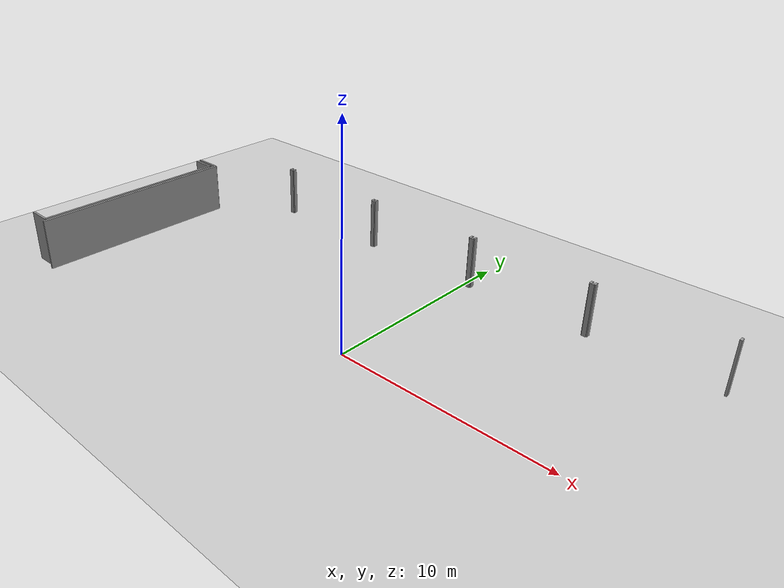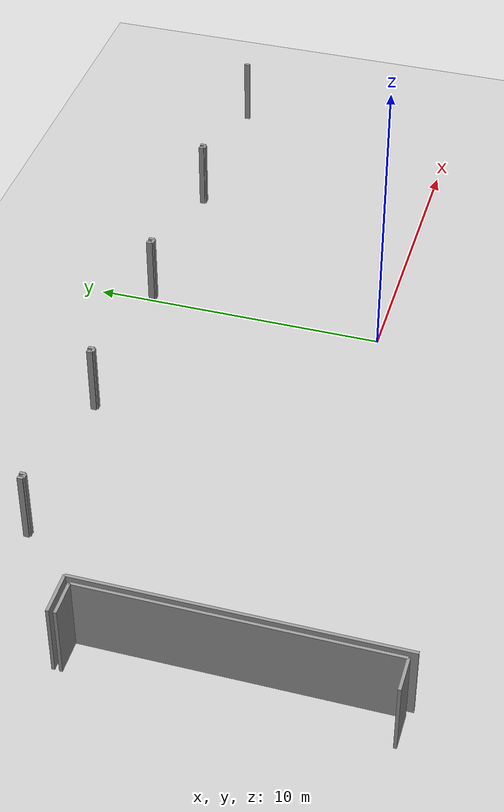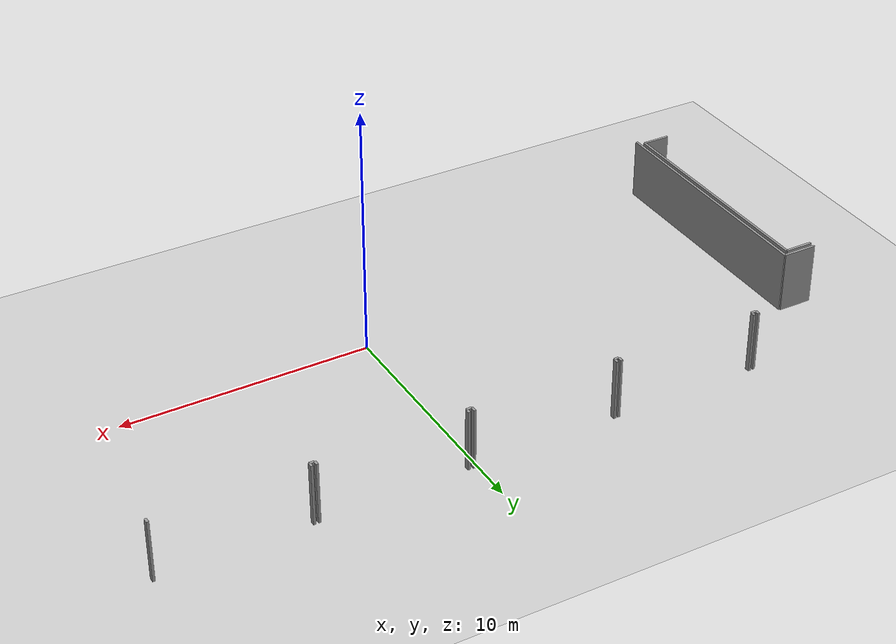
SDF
<sdf version="1.6">
 <world name="default">
  <model name="ground_plane">
   <static>1</static>
   <link name="link">
    <collision name="collision">
     <geometry><plane><normal>0 0 1</normal><size>100 100</size></plane></geometry>
     <surface><friction><ode><mu>100</mu><mu2>50</mu2></ode></friction></surface>
    </collision>
    <visual name="visual">
     <cast_shadows>0</cast_shadows>
     <geometry><plane><normal>0 0 1</normal><size>100 100</size></plane></geometry>
     <material>
      <script><uri>file://media/materials/scripts/gazebo.material</uri><name>Gazebo/Grey</name></script>
     </material>
    </visual>
   </link>
  </model>
  <model name="50041186">
   <static>1</static>
   <link name="Wall_76">
    <collision name="Wall_76_Collision">
     <geometry><box><size>1.1313977471 0.1 2.5</size></box></geometry>
     <pose>0.565698873552 0 1.25 0 0 0</pose>
    </collision>
    <visual name="Wall_76_Visual">
     <pose>0.565698873552 0 1.25 0 0 0</pose>
     <geometry><box><size>1.1313977471 0.1 2.5</size></box></geometry>
     <material>
      <script><uri>file://media/materials/scripts/gazebo.material</uri><name>Gazebo/Grey</name></script>
      <ambient>1 1 1 1</ambient>
     </material>
    </visual>
    <pose>44.5178486435 -12.6825955894 0 0 0 3.14159265359</pose>
   </link>
   <link name="Wall_80">
    <collision name="Wall_80_Collision">
     <geometry><box><size>1.13850547358 0.1 2.5</size></box></geometry>
     <pose>0.569252736792 0 1.25 0 0 0</pose>
    </collision>
    <visual name="Wall_80_Visual">
     <pose>0.569252736792 0 1.25 0 0 0</pose>
     <geometry><box><size>1.13850547358 0.1 2.5</size></box></geometry>
     <material>
      <script><uri>file://media/materials/scripts/gazebo.material</uri><name>Gazebo/Grey</name></script>
      <ambient>1 1 1 1</ambient>
     </material>
    </visual>
    <pose>43.3750277646 -2.99032206886 0 0 0 0.0</pose>
   </link>
   <link name="Wall_81">
    <collision name="Wall_81_Collision">
     <geometry><box><size>9.69227448125 0.1 2.5</size></box></geometry>
     <pose>4.84613724062 0 1.25 0 0 0</pose>
    </collision>
    <visual name="Wall_81_Visual">
     <pose>4.84613724062 0 1.25 0 0 0</pose>
     <geometry><box><size>9.69227448125 0.1 2.5</size></box></geometry>
     <material>
      <script><uri>file://media/materials/scripts/gazebo.material</uri><name>Gazebo/Grey</name></script>
      <ambient>1 1 1 1</ambient>
     </material>
    </visual>
    <pose>44.5135332381 -2.99032206886 0 0 0 -1.57035108502</pose>
   </link>
   <link name="Wall_87">
    <collision name="Wall_87_Collision">
     <geometry><box><size>10.160241155 0.1 2.5</size></box></geometry>
     <pose>5.0801205775 0 1.25 0 0 0</pose>
    </collision>
    <visual name="Wall_87_Visual">
     <pose>5.0801205775 0 1.25 0 0 0</pose>
     <geometry><box><size>10.160241155 0.1 2.5</size></box></geometry>
     <material>
      <script><uri>file://media/materials/scripts/gazebo.material</uri><name>Gazebo/Grey</name></script>
      <ambient>1 1 1 1</ambient>
     </material>
    </visual>
    <pose>44.7624305886 -12.9170236395 0 0 0 1.57079632679</pose>
   </link>
   <link name="Wall_88">
    <collision name="Wall_88_Collision">
     <geometry><box><size>1.37877201333 0.1 2.5</size></box></geometry>
     <pose>0.689386006663 0 1.25 0 0 0</pose>
    </collision>
    <visual name="Wall_88_Visual">
     <pose>0.689386006663 0 1.25 0 0 0</pose>
     <geometry><box><size>1.37877201333 0.1 2.5</size></box></geometry>
     <material>
      <script><uri>file://media/materials/scripts/gazebo.material</uri><name>Gazebo/Grey</name></script>
      <ambient>1 1 1 1</ambient>
     </material>
    </visual>
    <pose>44.7624305886 -2.75678248453 0 0 0 3.14159265359</pose>
   </link>
   <link name="Wall_94">
    <collision name="Wall_94_Collision">
     <geometry><box><size>0.182516262097 0.1 2.5</size></box></geometry>
     <pose>0.0912581310487 0 1.25 0 0 0</pose>
    </collision>
    <visual name="Wall_94_Visual">
     <pose>0.0912581310487 0 1.25 0 0 0</pose>
     <geometry><box><size>0.182516262097 0.1 2.5</size></box></geometry>
     <material>
      <script><uri>file://media/materials/scripts/gazebo.material</uri><name>Gazebo/Grey</name></script>
      <ambient>1 1 1 1</ambient>
     </material>
    </visual>
    <pose>48.0387117246 -0.0208154846898 0 0 0 -1.57079632679</pose>
   </link>
   <link name="Wall_95">
    <collision name="Wall_95_Collision">
     <geometry><box><size>0.195081707124 0.1 2.5</size></box></geometry>
     <pose>0.0975408535618 0 1.25 0 0 0</pose>
    </collision>
    <visual name="Wall_95_Visual">
     <pose>0.0975408535618 0 1.25 0 0 0</pose>
     <geometry><box><size>0.195081707124 0.1 2.5</size></box></geometry>
     <material>
      <script><uri>file://media/materials/scripts/gazebo.material</uri><name>Gazebo/Grey</name></script>
      <ambient>1 1 1 1</ambient>
     </material>
    </visual>
    <pose>48.0387117246 -0.203331746787 0 0 0 0.0</pose>
   </link>
   <link name="Wall_96">
    <collision name="Wall_96_Collision">
     <geometry><box><size>0.190766301761 0.1 2.5</size></box></geometry>
     <pose>0.0953831508805 0 1.25 0 0 0</pose>
    </collision>
    <visual name="Wall_96_Visual">
     <pose>0.0953831508805 0 1.25 0 0 0</pose>
     <geometry><box><size>0.190766301761 0.1 2.5</size></box></geometry>
     <material>
      <script><uri>file://media/materials/scripts/gazebo.material</uri><name>Gazebo/Grey</name></script>
      <ambient>1 1 1 1</ambient>
     </material>
    </visual>
    <pose>48.2337934317 -0.203331746787 0 0 0 1.57079632679</pose>
   </link>
   <link name="Wall_97">
    <collision name="Wall_97_Collision">
     <geometry><box><size>0.197493257179 0.1 2.5</size></box></geometry>
     <pose>0.0987466285896 0 1.25 0 0 0</pose>
    </collision>
    <visual name="Wall_97_Visual">
     <pose>0.0987466285896 0 1.25 0 0 0</pose>
     <geometry><box><size>0.197493257179 0.1 2.5</size></box></geometry>
     <material>
      <script><uri>file://media/materials/scripts/gazebo.material</uri><name>Gazebo/Grey</name></script>
      <ambient>1 1 1 1</ambient>
     </material>
    </visual>
    <pose>54.0295097573 -0.0125654450262 0 0 0 -1.57079632679</pose>
   </link>
   <link name="Wall_98">
    <collision name="Wall_98_Collision">
     <geometry><box><size>0.176550848802 0.1 2.5</size></box></geometry>
     <pose>0.0882754244011 0 1.25 0 0 0</pose>
    </collision>
    <visual name="Wall_98_Visual">
     <pose>0.0882754244011 0 1.25 0 0 0</pose>
     <geometry><box><size>0.176550848802 0.1 2.5</size></box></geometry>
     <material>
      <script><uri>file://media/materials/scripts/gazebo.material</uri><name>Gazebo/Grey</name></script>
      <ambient>1 1 1 1</ambient>
     </material>
    </visual>
    <pose>54.0295097573 -0.210058702205 0 0 0 0.0</pose>
   </link>
   <link name="Wall_99">
    <collision name="Wall_99_Collision">
     <geometry><box><size>0.210058702205 0.1 2.5</size></box></geometry>
     <pose>0.105029351103 0 1.25 0 0 0</pose>
    </collision>
    <visual name="Wall_99_Visual">
     <pose>0.105029351103 0 1.25 0 0 0</pose>
     <geometry><box><size>0.210058702205 0.1 2.5</size></box></geometry>
     <material>
      <script><uri>file://media/materials/scripts/gazebo.material</uri><name>Gazebo/Grey</name></script>
      <ambient>1 1 1 1</ambient>
     </material>
    </visual>
    <pose>54.2060606061 -0.210058702205 0 0 0 1.57079632679</pose>
   </link>
   <link name="Wall_100">
    <collision name="Wall_100_Collision">
     <geometry><box><size>0.211962557512 0.1 2.5</size></box></geometry>
     <pose>0.105981278756 0 1.25 0 0 0</pose>
    </collision>
    <visual name="Wall_100_Visual">
     <pose>0.105981278756 0 1.25 0 0 0</pose>
     <geometry><box><size>0.211962557512 0.1 2.5</size></box></geometry>
     <material>
      <script><uri>file://media/materials/scripts/gazebo.material</uri><name>Gazebo/Grey</name></script>
      <ambient>1 1 1 1</ambient>
     </material>
    </visual>
    <pose>60.0264001269 -0.0 0 0 0 -1.57079632679</pose>
   </link>
   <link name="Wall_101">
    <collision name="Wall_101_Collision">
     <geometry><box><size>0.212851023322 0.1 2.5</size></box></geometry>
     <pose>0.106425511661 0 1.25 0 0 0</pose>
    </collision>
    <visual name="Wall_101_Visual">
     <pose>0.106425511661 0 1.25 0 0 0</pose>
     <geometry><box><size>0.212851023322 0.1 2.5</size></box></geometry>
     <material>
      <script><uri>file://media/materials/scripts/gazebo.material</uri><name>Gazebo/Grey</name></script>
      <ambient>1 1 1 1</ambient>
     </material>
    </visual>
    <pose>60.0264001269 -0.211962557512 0 0 0 0.0</pose>
   </link>
   <link name="Wall_102">
    <collision name="Wall_102_Collision">
     <geometry><box><size>0.201935586229 0.1 2.5</size></box></geometry>
     <pose>0.100967793114 0 1.25 0 0 0</pose>
    </collision>
    <visual name="Wall_102_Visual">
     <pose>0.100967793114 0 1.25 0 0 0</pose>
     <geometry><box><size>0.201935586229 0.1 2.5</size></box></geometry>
     <material>
      <script><uri>file://media/materials/scripts/gazebo.material</uri><name>Gazebo/Grey</name></script>
      <ambient>1 1 1 1</ambient>
     </material>
    </visual>
    <pose>60.2392511502 -0.211962557512 0 0 0 1.57079632679</pose>
   </link>
   <link name="Wall_103">
    <collision name="Wall_103_Collision">
     <geometry><box><size>0.185689354276 0.1 2.5</size></box></geometry>
     <pose>0.0928446771379 0 1.25 0 0 0</pose>
    </collision>
    <visual name="Wall_103_Visual">
     <pose>0.0928446771379 0 1.25 0 0 0</pose>
     <geometry><box><size>0.185689354276 0.1 2.5</size></box></geometry>
     <material>
      <script><uri>file://media/materials/scripts/gazebo.material</uri><name>Gazebo/Grey</name></script>
      <ambient>1 1 1 1</ambient>
     </material>
    </visual>
    <pose>66.0251943519 -0.0100269712835 0 0 0 -1.57079632679</pose>
   </link>
   <link name="Wall_104">
    <collision name="Wall_104_Collision">
     <geometry><box><size>0.195589401872 0.1 2.5</size></box></geometry>
     <pose>0.0977947009361 0 1.25 0 0 0</pose>
    </collision>
    <visual name="Wall_104_Visual">
     <pose>0.0977947009361 0 1.25 0 0 0</pose>
     <geometry><box><size>0.195589401872 0.1 2.5</size></box></geometry>
     <material>
      <script><uri>file://media/materials/scripts/gazebo.material</uri><name>Gazebo/Grey</name></script>
      <ambient>1 1 1 1</ambient>
     </material>
    </visual>
    <pose>66.0251943519 -0.195716325559 0 0 0 0.0</pose>
   </link>
   <link name="Wall_105">
    <collision name="Wall_105_Collision">
     <geometry><box><size>0.190893225448 0.1 2.5</size></box></geometry>
     <pose>0.0954466127241 0 1.25 0 0 0</pose>
    </collision>
    <visual name="Wall_105_Visual">
     <pose>0.0954466127241 0 1.25 0 0 0</pose>
     <geometry><box><size>0.190893225448 0.1 2.5</size></box></geometry>
     <material>
      <script><uri>file://media/materials/scripts/gazebo.material</uri><name>Gazebo/Grey</name></script>
      <ambient>1 1 1 1</ambient>
     </material>
    </visual>
    <pose>66.2207837538 -0.195716325559 0 0 0 1.57079632679</pose>
   </link>
   <link name="Wall_106">
    <collision name="Wall_106_Collision">
     <geometry><box><size>0.207139457401 0.1 2.5</size></box></geometry>
     <pose>0.103569728701 0 1.25 0 0 0</pose>
    </collision>
    <visual name="Wall_106_Visual">
     <pose>0.103569728701 0 1.25 0 0 0</pose>
     <geometry><box><size>0.207139457401 0.1 2.5</size></box></geometry>
     <material>
      <script><uri>file://media/materials/scripts/gazebo.material</uri><name>Gazebo/Grey</name></script>
      <ambient>1 1 1 1</ambient>
     </material>
    </visual>
    <pose>72.0228462637 -0.00482310011106 0 0 0 -1.57079632679</pose>
   </link>
   <pose>-59.9 8.31532603522 0 0 0 0</pose>
  </model>
 </world>
</sdf>
